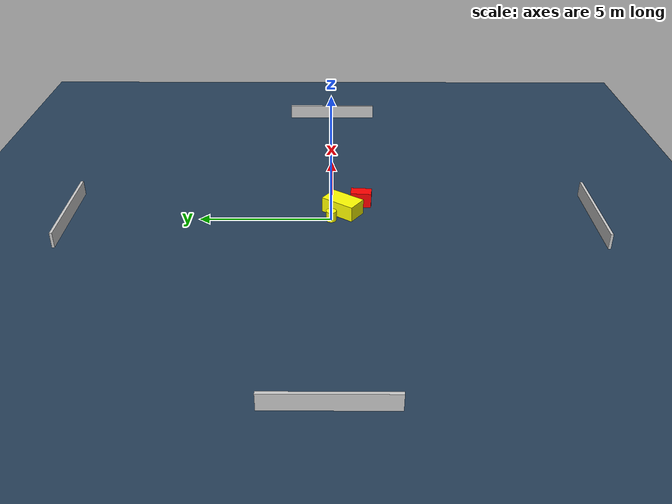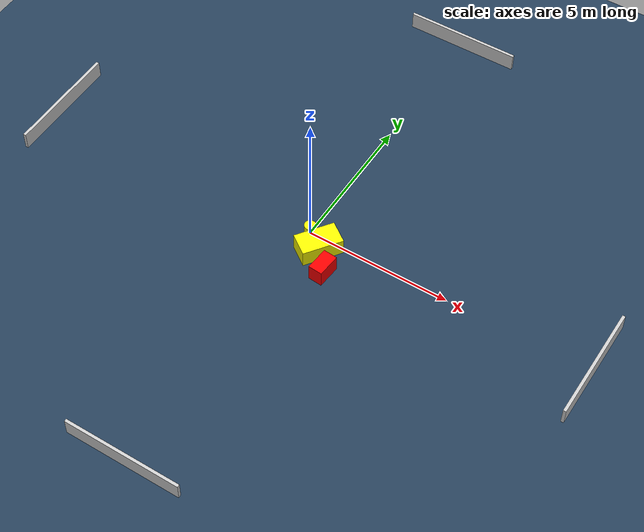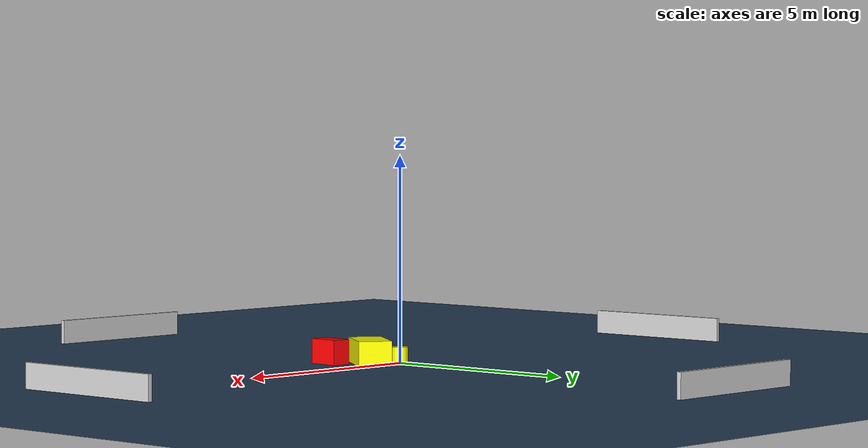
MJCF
<?xml version="1.0" ?>
<mujoco model="generated_environment">
  <option timestep="0.01" integrator="RK4" cone="elliptic"/>
  <default>
    <geom density="1"/>
  </default>
  <asset>
    <texture builtin="gradient" height="3072" name="skybox" rgb1="0.3 0.5 0.7" rgb2="0 0 0" type="skybox" width="512"/>
    <texture builtin="checker" height="300" name="groundplane" rgb1="0.2 0.3 0.4" rgb2="0.1 0.2 0.3" type="2d" width="300"/>
    <material name="groundplane" reflectance="0.2" texrepeat="5 5" texture="groundplane"/>
  </asset>
  <worldbody>
    <light dir="0 0 -1" directional="true" pos="0 0 1.5"/>
    <geom condim="3" friction="0.5 0.005 0.001" material="groundplane" name="floor" pos="0 0 0" size="0 0 0.05" type="plane"/>
    <body name="walls">
      <geom name="wall_1" condim="4" pos="-10.0 0.0 0.3" rgba="0.800000011920929 0.800000011920929 0.800000011920929 1.0" size="0.05 2.0 0.3" type="box"/>
      <geom name="wall_2" condim="4" pos="10.0 0.0 0.3" rgba="0.800000011920929 0.800000011920929 0.800000011920929 1.0" size="0.05 2.0 0.3" type="box"/>
      <geom name="wall_3" condim="4" pos="0.0 -10.0 0.3" rgba="0.800000011920929 0.800000011920929 0.800000011920929 1.0" size="2.0 0.05 0.3" type="box"/>
      <geom name="wall_4" condim="4" pos="0.0 10.0 0.3" rgba="0.800000011920929 0.800000011920929 0.800000011920929 1.0" size="2.0 0.05 0.3" type="box"/>
    </body>
    <body name="robot">
      <joint name="joint_x" type="slide" pos="0 0 0" axis="1 0 0"/>
      <joint name="joint_y" type="slide" pos="0 0 0" axis="0 1 0"/>
      <geom name="robot" type="cylinder" pos="0.0 0.0 0.2" size="0.2 0.2 0.0" mass="5.0" friction="1.0 0.005 0.0001" condim="4" rgba="1.0 1.0 0.0 1.0"/>
    </body>
    <body name="obstacle_1_movable">
      <geom name="obstacle_1_movable" condim="4" pos="0.587925520370235 -0.44026279741346436 0.3" euler="0 0 54.34824381956631" friction="0.0 0.005 0.001" rgba="1.0 1.0 0.0 1.0" size="0.6942201259560221 0.4007279489798522 0.3" type="box" mass="0.1"/>
      <joint type="free"/>
    </body>
    <body name="obstacle_2_static">
      <geom name="obstacle_2_static" condim="4" pos="1.2033206852408778 -1.1676206815348988 0.3" euler="0 0 85.25493259925554" friction="0.0 0.005 0.001" rgba="1.0 0.0 0.0 1.0" size="0.4019683862626062 0.24057763228406814 0.3" type="box"/>
    </body>
  </worldbody>
  <actuator>
    <motor name="actuator_x" joint="joint_x" gear="1" ctrlrange="-1 1"/>
    <motor name="actuator_y" joint="joint_y" gear="1" ctrlrange="-1 1"/>
  </actuator>
</mujoco>
